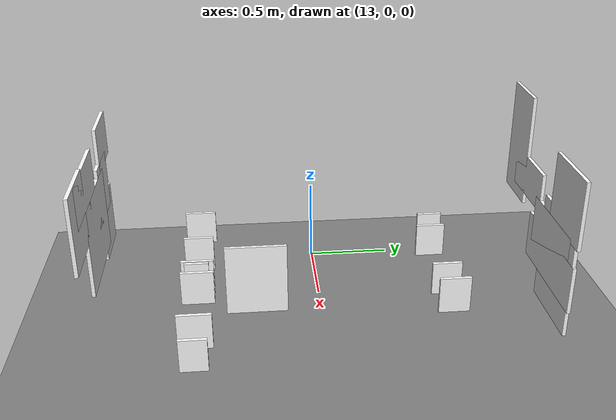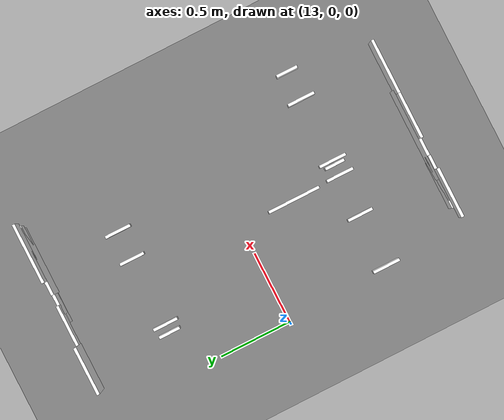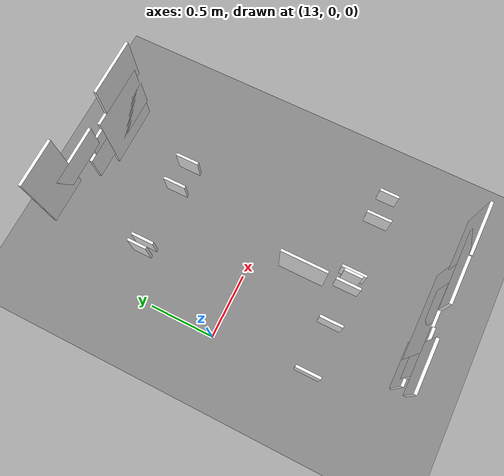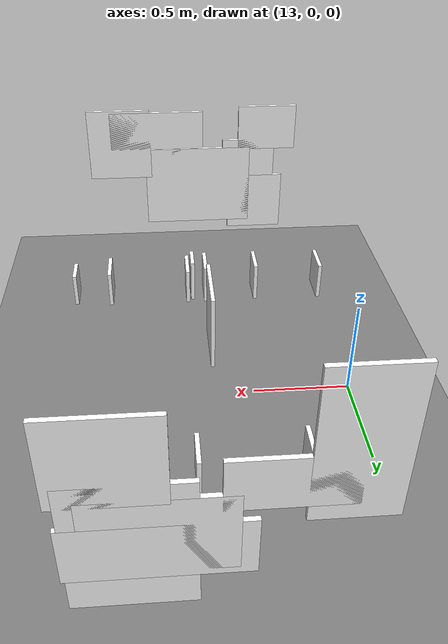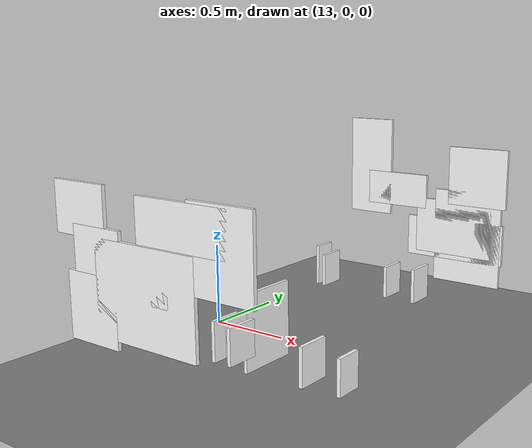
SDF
<sdf version="1.9">
 <world name="tunnel_world">
  <model name="ground_plane">
   <static>true</static>
   <link name="ground">
    <collision name="ground_collision">
     <geometry><plane><normal>0 0 1</normal><size>100 100</size></plane></geometry>
    </collision>
    <visual name="ground_visual">
     <geometry><plane><normal>0 0 1</normal><size>100 100</size></plane></geometry>
     <material>
      <diffuse>0.50 0.50 0.50 1</diffuse>
      <emissive>0.08 0.08 0.08 1</emissive>
      <ambient>0.5 0.5 0.5</ambient>
     </material>
    </visual>
   </link>
  </model>
  <model name="defect_crack_01">
   <static>true</static>
   <pose>14.153 1.25 0.87 0 0 0</pose>
   <link name="link">
    <visual name="visual">
     <laser_retro>500</laser_retro>
     <geometry><box><size>0.407 0.02 0.385</size></box></geometry>
     <material>
      <ambient>1 1 1 1</ambient>
      <diffuse>1 1 1 1</diffuse>
      <emissive>0.05 0.05 0.05 1</emissive>
      <specular>0.05 0.05 0.05 1</specular>
      <pbr>
       <metal>
        <albedo_map>file:///home/ylf/workspace/inspection_robot/data_gen/textures_data1/crack_8.png</albedo_map>
        <metalness>0.0</metalness>
        <roughness>0.9</roughness>
       </metal>
      </pbr>
     </material>
    </visual>
    <collision name="collision"><geometry><box><size>0.407 0.02 0.385</size></box></geometry></collision>
   </link>
  </model>
  <model name="defect_crack_08">
   <static>true</static>
   <pose>13.99 1.25 0.514 0 0 0</pose>
   <link name="link">
    <visual name="visual">
     <laser_retro>500</laser_retro>
     <geometry><box><size>0.547 0.02 0.368</size></box></geometry>
     <material>
      <ambient>1 1 1 1</ambient>
      <diffuse>1 1 1 1</diffuse>
      <emissive>0.05 0.05 0.05 1</emissive>
      <specular>0.05 0.05 0.05 1</specular>
      <pbr>
       <metal>
        <albedo_map>file:///home/ylf/workspace/inspection_robot/data_gen/textures_data1/crack_1.png</albedo_map>
        <metalness>0.0</metalness>
        <roughness>0.9</roughness>
       </metal>
      </pbr>
     </material>
    </visual>
    <collision name="collision"><geometry><box><size>0.547 0.02 0.368</size></box></geometry></collision>
   </link>
  </model>
  <model name="defect_crack_11">
   <static>true</static>
   <pose>13.955 -1.25 0.96 0 0 0</pose>
   <link name="link">
    <visual name="visual">
     <laser_retro>500</laser_retro>
     <geometry><box><size>0.547 0.02 0.222</size></box></geometry>
     <material>
      <ambient>1 1 1 1</ambient>
      <diffuse>1 1 1 1</diffuse>
      <emissive>0.05 0.05 0.05 1</emissive>
      <specular>0.05 0.05 0.05 1</specular>
      <pbr>
       <metal>
        <albedo_map>file:///home/ylf/workspace/inspection_robot/data_gen/textures_data1/crack_23.png</albedo_map>
        <metalness>0.0</metalness>
        <roughness>0.9</roughness>
       </metal>
      </pbr>
     </material>
    </visual>
    <collision name="collision"><geometry><box><size>0.547 0.02 0.222</size></box></geometry></collision>
   </link>
  </model>
  <model name="defect_crack_18">
   <static>true</static>
   <pose>14.178 -1.25 0.877 0 0 0</pose>
   <link name="link">
    <visual name="visual">
     <laser_retro>500</laser_retro>
     <geometry><box><size>0.366 0.02 0.417</size></box></geometry>
     <material>
      <ambient>1 1 1 1</ambient>
      <diffuse>1 1 1 1</diffuse>
      <emissive>0.05 0.05 0.05 1</emissive>
      <specular>0.05 0.05 0.05 1</specular>
      <pbr>
       <metal>
        <albedo_map>file:///home/ylf/workspace/inspection_robot/data_gen/textures_data1/crack_7.png</albedo_map>
        <metalness>0.0</metalness>
        <roughness>0.9</roughness>
       </metal>
      </pbr>
     </material>
    </visual>
    <collision name="collision"><geometry><box><size>0.366 0.02 0.417</size></box></geometry></collision>
   </link>
  </model>
  <model name="defect_equip_intrusion_07">
   <static>true</static>
   <pose>13.699 -0.38 0.227 0 0 0</pose>
   <link name="link">
    <visual name="visual">
     <laser_retro>900</laser_retro>
     <geometry><box><size>0.02 0.361 0.435</size></box></geometry>
     <material>
      <ambient>1 1 1 1</ambient>
      <diffuse>1 1 1 1</diffuse>
      <emissive>0.05 0.05 0.05 1</emissive>
      <specular>0.05 0.05 0.05 1</specular>
      <pbr>
       <metal>
        <albedo_map>file:///home/ylf/workspace/inspection_robot/data_gen/textures_data1/equip_intrusion_10.png</albedo_map>
        <metalness>0.0</metalness>
        <roughness>0.9</roughness>
       </metal>
      </pbr>
     </material>
    </visual>
   </link>
  </model>
  <model name="defect_leakage_05">
   <static>true</static>
   <pose>14.092 1.25 0.46 0 0 0</pose>
   <link name="link">
    <visual name="visual">
     <laser_retro>300</laser_retro>
     <geometry><box><size>0.47 0.02 0.623</size></box></geometry>
     <material>
      <ambient>1 1 1 1</ambient>
      <diffuse>1 1 1 1</diffuse>
      <emissive>0.05 0.05 0.05 1</emissive>
      <specular>0.05 0.05 0.05 1</specular>
      <pbr>
       <metal>
        <albedo_map>file:///home/ylf/workspace/inspection_robot/data_gen/textures_data1/leakage_21.png</albedo_map>
        <metalness>0.0</metalness>
        <roughness>0.9</roughness>
       </metal>
      </pbr>
     </material>
    </visual>
    <collision name="collision"><geometry><box><size>0.47 0.02 0.623</size></box></geometry></collision>
   </link>
  </model>
  <model name="defect_leakage_10">
   <static>true</static>
   <pose>13.714 -1.25 0.602 0 0 0</pose>
   <link name="link">
    <visual name="visual">
     <laser_retro>300</laser_retro>
     <geometry><box><size>0.631 0.02 0.484</size></box></geometry>
     <material>
      <ambient>1 1 1 1</ambient>
      <diffuse>1 1 1 1</diffuse>
      <emissive>0.05 0.05 0.05 1</emissive>
      <specular>0.05 0.05 0.05 1</specular>
      <pbr>
       <metal>
        <albedo_map>file:///home/ylf/workspace/inspection_robot/data_gen/textures_data1/leakage_23.png</albedo_map>
        <metalness>0.0</metalness>
        <roughness>0.9</roughness>
       </metal>
      </pbr>
     </material>
    </visual>
    <collision name="collision"><geometry><box><size>0.631 0.02 0.484</size></box></geometry></collision>
   </link>
  </model>
  <model name="defect_leakage_12">
   <static>true</static>
   <pose>13.343 1.25 0.886 0 0 0</pose>
   <link name="link">
    <visual name="visual">
     <laser_retro>300</laser_retro>
     <geometry><box><size>0.323 0.02 0.657</size></box></geometry>
     <material>
      <ambient>1 1 1 1</ambient>
      <diffuse>1 1 1 1</diffuse>
      <emissive>0.05 0.05 0.05 1</emissive>
      <specular>0.05 0.05 0.05 1</specular>
      <pbr>
       <metal>
        <albedo_map>file:///home/ylf/workspace/inspection_robot/data_gen/textures_data1/leakage_17.png</albedo_map>
        <metalness>0.0</metalness>
        <roughness>0.9</roughness>
       </metal>
      </pbr>
     </material>
    </visual>
    <collision name="collision"><geometry><box><size>0.323 0.02 0.657</size></box></geometry></collision>
   </link>
  </model>
  <model name="defect_leakage_16">
   <static>true</static>
   <pose>13.362 -1.25 0.486 0 0 0</pose>
   <link name="link">
    <visual name="visual">
     <laser_retro>300</laser_retro>
     <geometry><box><size>0.331 0.02 0.349</size></box></geometry>
     <material>
      <ambient>1 1 1 1</ambient>
      <diffuse>1 1 1 1</diffuse>
      <emissive>0.05 0.05 0.05 1</emissive>
      <specular>0.05 0.05 0.05 1</specular>
      <pbr>
       <metal>
        <albedo_map>file:///home/ylf/workspace/inspection_robot/data_gen/textures_data1/leakage_5.png</albedo_map>
        <metalness>0.0</metalness>
        <roughness>0.9</roughness>
       </metal>
      </pbr>
     </material>
    </visual>
    <collision name="collision"><geometry><box><size>0.331 0.02 0.349</size></box></geometry></collision>
   </link>
  </model>
  <model name="defect_leakage_20">
   <static>true</static>
   <pose>13.998 1.25 0.435 0 0 0</pose>
   <link name="link">
    <visual name="visual">
     <laser_retro>300</laser_retro>
     <geometry><box><size>0.688 0.02 0.271</size></box></geometry>
     <material>
      <ambient>1 1 1 1</ambient>
      <diffuse>1 1 1 1</diffuse>
      <emissive>0.05 0.05 0.05 1</emissive>
      <specular>0.05 0.05 0.05 1</specular>
      <pbr>
       <metal>
        <albedo_map>file:///home/ylf/workspace/inspection_robot/data_gen/textures_data1/leakage_8.png</albedo_map>
        <metalness>0.0</metalness>
        <roughness>0.9</roughness>
       </metal>
      </pbr>
     </material>
    </visual>
    <collision name="collision"><geometry><box><size>0.688 0.02 0.271</size></box></geometry></collision>
   </link>
  </model>
  <model name="defect_rail_fastener_broken_03">
   <static>true</static>
   <pose>13.363 0.717 0.259 0 0 0</pose>
   <link name="link">
    <visual name="visual">
     <laser_retro>450</laser_retro>
     <geometry><box><size>0.02 0.173 0.207</size></box></geometry>
     <material>
      <ambient>1 1 1 1</ambient>
      <diffuse>1 1 1 1</diffuse>
      <emissive>0.05 0.05 0.05 1</emissive>
      <specular>0.05 0.05 0.05 1</specular>
      <pbr>
       <metal>
        <albedo_map>file:///home/ylf/workspace/inspection_robot/data_gen/textures_data1/rail_fastener_broken_14.png</albedo_map>
        <metalness>0.0</metalness>
        <roughness>0.9</roughness>
       </metal>
      </pbr>
     </material>
    </visual>
   </link>
  </model>
  <model name="defect_rail_fastener_broken_06">
   <static>true</static>
   <pose>13.781 -0.717 0.277 0 0 0</pose>
   <link name="link">
    <visual name="visual">
     <laser_retro>450</laser_retro>
     <geometry><box><size>0.02 0.137 0.244</size></box></geometry>
     <material>
      <ambient>1 1 1 1</ambient>
      <diffuse>1 1 1 1</diffuse>
      <emissive>0.05 0.05 0.05 1</emissive>
      <specular>0.05 0.05 0.05 1</specular>
      <pbr>
       <metal>
        <albedo_map>file:///home/ylf/workspace/inspection_robot/data_gen/textures_data1/rail_fastener_broken_16.png</albedo_map>
        <metalness>0.0</metalness>
        <roughness>0.9</roughness>
       </metal>
      </pbr>
     </material>
    </visual>
   </link>
  </model>
  <model name="defect_rail_fastener_broken_07">
   <static>true</static>
   <pose>13.707 -0.717 0.264 0 0 0</pose>
   <link name="link">
    <visual name="visual">
     <laser_retro>450</laser_retro>
     <geometry><box><size>0.02 0.187 0.218</size></box></geometry>
     <material>
      <ambient>1 1 1 1</ambient>
      <diffuse>1 1 1 1</diffuse>
      <emissive>0.05 0.05 0.05 1</emissive>
      <specular>0.05 0.05 0.05 1</specular>
      <pbr>
       <metal>
        <albedo_map>file:///home/ylf/workspace/inspection_robot/data_gen/textures_data1/rail_fastener_broken_11.png</albedo_map>
        <metalness>0.0</metalness>
        <roughness>0.9</roughness>
       </metal>
      </pbr>
     </material>
    </visual>
   </link>
  </model>
  <model name="defect_rail_fastener_broken_14">
   <static>true</static>
   <pose>13.81 -0.717 0.256 0 0 0</pose>
   <link name="link">
    <visual name="visual">
     <laser_retro>450</laser_retro>
     <geometry><box><size>0.02 0.188 0.202</size></box></geometry>
     <material>
      <ambient>1 1 1 1</ambient>
      <diffuse>1 1 1 1</diffuse>
      <emissive>0.05 0.05 0.05 1</emissive>
      <specular>0.05 0.05 0.05 1</specular>
      <pbr>
       <metal>
        <albedo_map>file:///home/ylf/workspace/inspection_robot/data_gen/textures_data1/rail_fastener_broken_9.png</albedo_map>
        <metalness>0.0</metalness>
        <roughness>0.9</roughness>
       </metal>
      </pbr>
     </material>
    </visual>
   </link>
  </model>
  <model name="defect_rail_fastener_broken_20">
   <static>true</static>
   <pose>14.452 -0.717 0.248 0 0 0</pose>
   <link name="link">
    <visual name="visual">
     <laser_retro>450</laser_retro>
     <geometry><box><size>0.02 0.148 0.187</size></box></geometry>
     <material>
      <ambient>1 1 1 1</ambient>
      <diffuse>1 1 1 1</diffuse>
      <emissive>0.05 0.05 0.05 1</emissive>
      <specular>0.05 0.05 0.05 1</specular>
      <pbr>
       <metal>
        <albedo_map>file:///home/ylf/workspace/inspection_robot/data_gen/textures_data1/rail_fastener_broken_13.png</albedo_map>
        <metalness>0.0</metalness>
        <roughness>0.9</roughness>
       </metal>
      </pbr>
     </material>
    </visual>
   </link>
  </model>
  <model name="defect_rail_fastener_loose_10">
   <static>true</static>
   <pose>13.834 0.717 0.255 0 0 0</pose>
   <link name="link">
    <visual name="visual">
     <laser_retro>380</laser_retro>
     <geometry><box><size>0.02 0.172 0.199</size></box></geometry>
     <material>
      <ambient>1 1 1 1</ambient>
      <diffuse>1 1 1 1</diffuse>
      <emissive>0.05 0.05 0.05 1</emissive>
      <specular>0.05 0.05 0.05 1</specular>
      <pbr>
       <metal>
        <albedo_map>file:///home/ylf/workspace/inspection_robot/data_gen/textures_data1/rail_fastener_loose_19.png</albedo_map>
        <metalness>0.0</metalness>
        <roughness>0.9</roughness>
       </metal>
      </pbr>
     </material>
    </visual>
   </link>
  </model>
  <model name="defect_rail_fastener_loose_24">
   <static>true</static>
   <pose>13.304 0.717 0.284 0 0 0</pose>
   <link name="link">
    <visual name="visual">
     <laser_retro>380</laser_retro>
     <geometry><box><size>0.02 0.147 0.258</size></box></geometry>
     <material>
      <ambient>1 1 1 1</ambient>
      <diffuse>1 1 1 1</diffuse>
      <emissive>0.05 0.05 0.05 1</emissive>
      <specular>0.05 0.05 0.05 1</specular>
      <pbr>
       <metal>
        <albedo_map>file:///home/ylf/workspace/inspection_robot/data_gen/textures_data1/rail_fastener_loose_5.png</albedo_map>
        <metalness>0.0</metalness>
        <roughness>0.9</roughness>
       </metal>
      </pbr>
     </material>
    </visual>
   </link>
  </model>
  <model name="defect_rail_fastener_loose_25">
   <static>true</static>
   <pose>13.05 -0.717 0.259 0 0 0</pose>
   <link name="link">
    <visual name="visual">
     <laser_retro>380</laser_retro>
     <geometry><box><size>0.02 0.188 0.209</size></box></geometry>
     <material>
      <ambient>1 1 1 1</ambient>
      <diffuse>1 1 1 1</diffuse>
      <emissive>0.05 0.05 0.05 1</emissive>
      <specular>0.05 0.05 0.05 1</specular>
      <pbr>
       <metal>
        <albedo_map>file:///home/ylf/workspace/inspection_robot/data_gen/textures_data1/rail_fastener_loose_3.png</albedo_map>
        <metalness>0.0</metalness>
        <roughness>0.9</roughness>
       </metal>
      </pbr>
     </material>
    </visual>
   </link>
  </model>
  <model name="defect_rail_fastener_missing_19">
   <static>true</static>
   <pose>14.253 -0.717 0.257 0 0 0</pose>
   <link name="link">
    <visual name="visual">
     <laser_retro>520</laser_retro>
     <geometry><box><size>0.02 0.187 0.205</size></box></geometry>
     <material>
      <ambient>1 1 1 1</ambient>
      <diffuse>1 1 1 1</diffuse>
      <emissive>0.05 0.05 0.05 1</emissive>
      <specular>0.05 0.05 0.05 1</specular>
      <pbr>
       <metal>
        <albedo_map>file:///home/ylf/workspace/inspection_robot/data_gen/textures_data1/rail_fastener_missing_17.png</albedo_map>
        <metalness>0.0</metalness>
        <roughness>0.9</roughness>
       </metal>
      </pbr>
     </material>
    </visual>
   </link>
  </model>
  <model name="defect_rail_fastener_missing_23">
   <static>true</static>
   <pose>13.42 -0.717 0.265 0 0 0</pose>
   <link name="link">
    <visual name="visual">
     <laser_retro>520</laser_retro>
     <geometry><box><size>0.02 0.175 0.219</size></box></geometry>
     <material>
      <ambient>1 1 1 1</ambient>
      <diffuse>1 1 1 1</diffuse>
      <emissive>0.05 0.05 0.05 1</emissive>
      <specular>0.05 0.05 0.05 1</specular>
      <pbr>
       <metal>
        <albedo_map>file:///home/ylf/workspace/inspection_robot/data_gen/textures_data1/rail_fastener_missing_4.png</albedo_map>
        <metalness>0.0</metalness>
        <roughness>0.9</roughness>
       </metal>
      </pbr>
     </material>
    </visual>
   </link>
  </model>
  <model name="defect_rail_fastener_missing_24">
   <static>true</static>
   <pose>14.033 0.717 0.262 0 0 0</pose>
   <link name="link">
    <visual name="visual">
     <laser_retro>520</laser_retro>
     <geometry><box><size>0.02 0.178 0.214</size></box></geometry>
     <material>
      <ambient>1 1 1 1</ambient>
      <diffuse>1 1 1 1</diffuse>
      <emissive>0.05 0.05 0.05 1</emissive>
      <specular>0.05 0.05 0.05 1</specular>
      <pbr>
       <metal>
        <albedo_map>file:///home/ylf/workspace/inspection_robot/data_gen/textures_data1/rail_fastener_missing_6.png</albedo_map>
        <metalness>0.0</metalness>
        <roughness>0.9</roughness>
       </metal>
      </pbr>
     </material>
    </visual>
   </link>
  </model>
  <model name="defect_spalling_07">
   <static>true</static>
   <pose>13.556 1.25 0.74 0 0 0</pose>
   <link name="link">
    <visual name="visual">
     <laser_retro>700</laser_retro>
     <geometry><box><size>0.454 0.02 0.227</size></box></geometry>
     <material>
      <ambient>1 1 1 1</ambient>
      <diffuse>1 1 1 1</diffuse>
      <emissive>0.05 0.05 0.05 1</emissive>
      <specular>0.05 0.05 0.05 1</specular>
      <pbr>
       <metal>
        <albedo_map>file:///home/ylf/workspace/inspection_robot/data_gen/textures_data1/spalling_8.png</albedo_map>
        <metalness>0.0</metalness>
        <roughness>0.9</roughness>
       </metal>
      </pbr>
     </material>
    </visual>
    <collision name="collision"><geometry><box><size>0.454 0.02 0.227</size></box></geometry></collision>
   </link>
  </model>
  <model name="defect_spalling_09">
   <static>true</static>
   <pose>13.407 -1.25 0.725 0 0 0</pose>
   <link name="link">
    <visual name="visual">
     <laser_retro>700</laser_retro>
     <geometry><box><size>0.312 0.02 0.335</size></box></geometry>
     <material>
      <ambient>1 1 1 1</ambient>
      <diffuse>1 1 1 1</diffuse>
      <emissive>0.05 0.05 0.05 1</emissive>
      <specular>0.05 0.05 0.05 1</specular>
      <pbr>
       <metal>
        <albedo_map>file:///home/ylf/workspace/inspection_robot/data_gen/textures_data1/spalling_18.png</albedo_map>
        <metalness>0.0</metalness>
        <roughness>0.9</roughness>
       </metal>
      </pbr>
     </material>
    </visual>
    <collision name="collision"><geometry><box><size>0.312 0.02 0.335</size></box></geometry></collision>
   </link>
  </model>
  <model name="defect_spalling_12">
   <static>true</static>
   <pose>13.732 -1.25 0.707 0 0 0</pose>
   <link name="link">
    <visual name="visual">
     <laser_retro>700</laser_retro>
     <geometry><box><size>0.269 0.02 0.259</size></box></geometry>
     <material>
      <ambient>1 1 1 1</ambient>
      <diffuse>1 1 1 1</diffuse>
      <emissive>0.05 0.05 0.05 1</emissive>
      <specular>0.05 0.05 0.05 1</specular>
      <pbr>
       <metal>
        <albedo_map>file:///home/ylf/workspace/inspection_robot/data_gen/textures_data1/spalling_14.png</albedo_map>
        <metalness>0.0</metalness>
        <roughness>0.9</roughness>
       </metal>
      </pbr>
     </material>
    </visual>
    <collision name="collision"><geometry><box><size>0.269 0.02 0.259</size></box></geometry></collision>
   </link>
  </model>
  <model name="defect_spalling_23">
   <static>true</static>
   <pose>13.3 -1.25 0.965 0 0 0</pose>
   <link name="link">
    <visual name="visual">
     <laser_retro>700</laser_retro>
     <geometry><box><size>0.339 0.02 0.261</size></box></geometry>
     <material>
      <ambient>1 1 1 1</ambient>
      <diffuse>1 1 1 1</diffuse>
      <emissive>0.05 0.05 0.05 1</emissive>
      <specular>0.05 0.05 0.05 1</specular>
      <pbr>
       <metal>
        <albedo_map>file:///home/ylf/workspace/inspection_robot/data_gen/textures_data1/spalling_10.png</albedo_map>
        <metalness>0.0</metalness>
        <roughness>0.9</roughness>
       </metal>
      </pbr>
     </material>
    </visual>
    <collision name="collision"><geometry><box><size>0.339 0.02 0.261</size></box></geometry></collision>
   </link>
  </model>
 </world>
</sdf>
